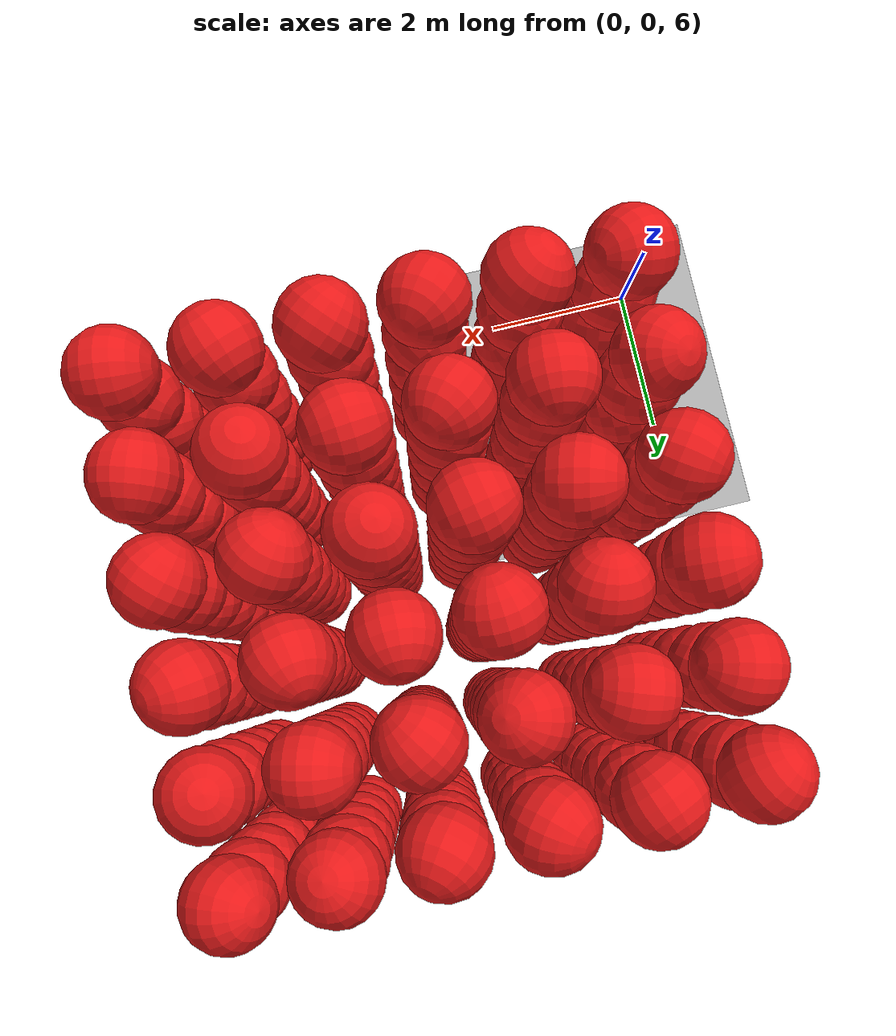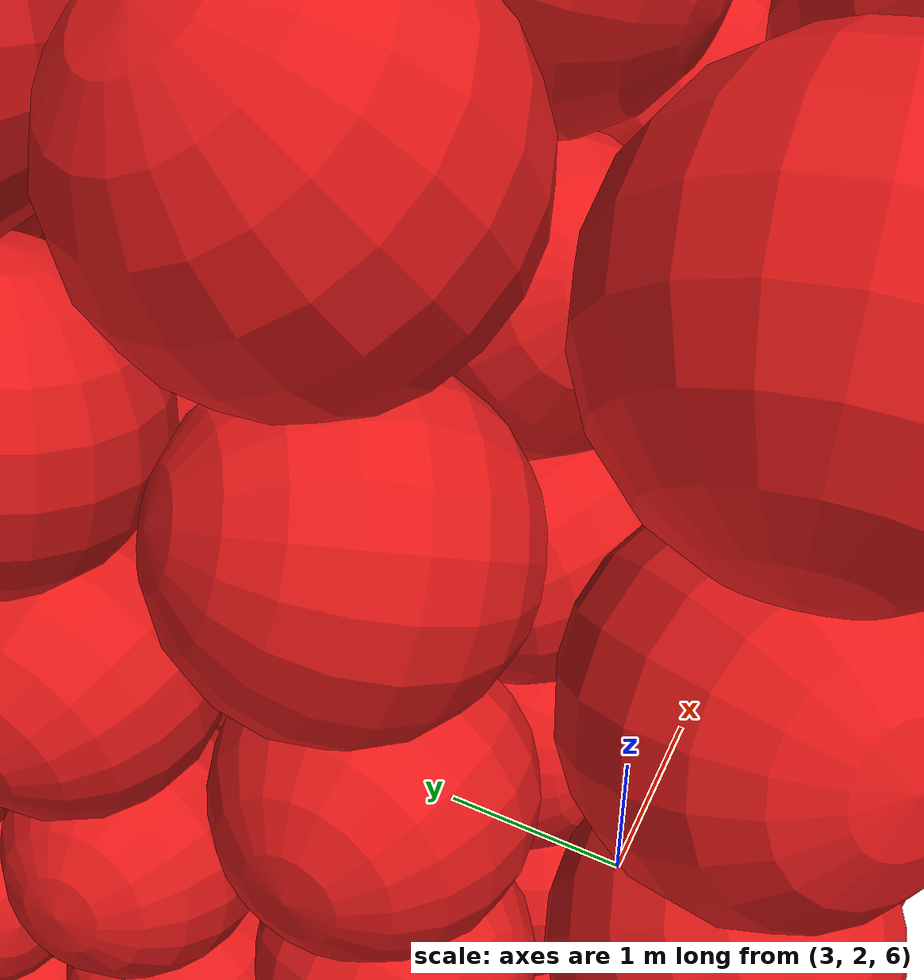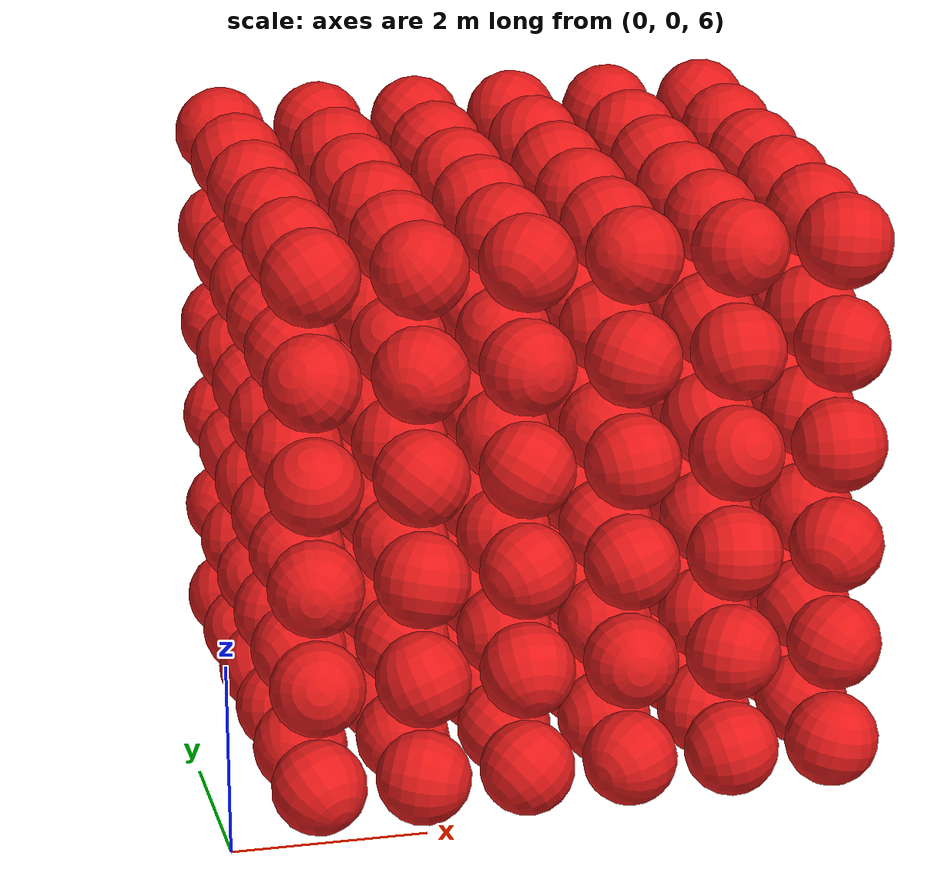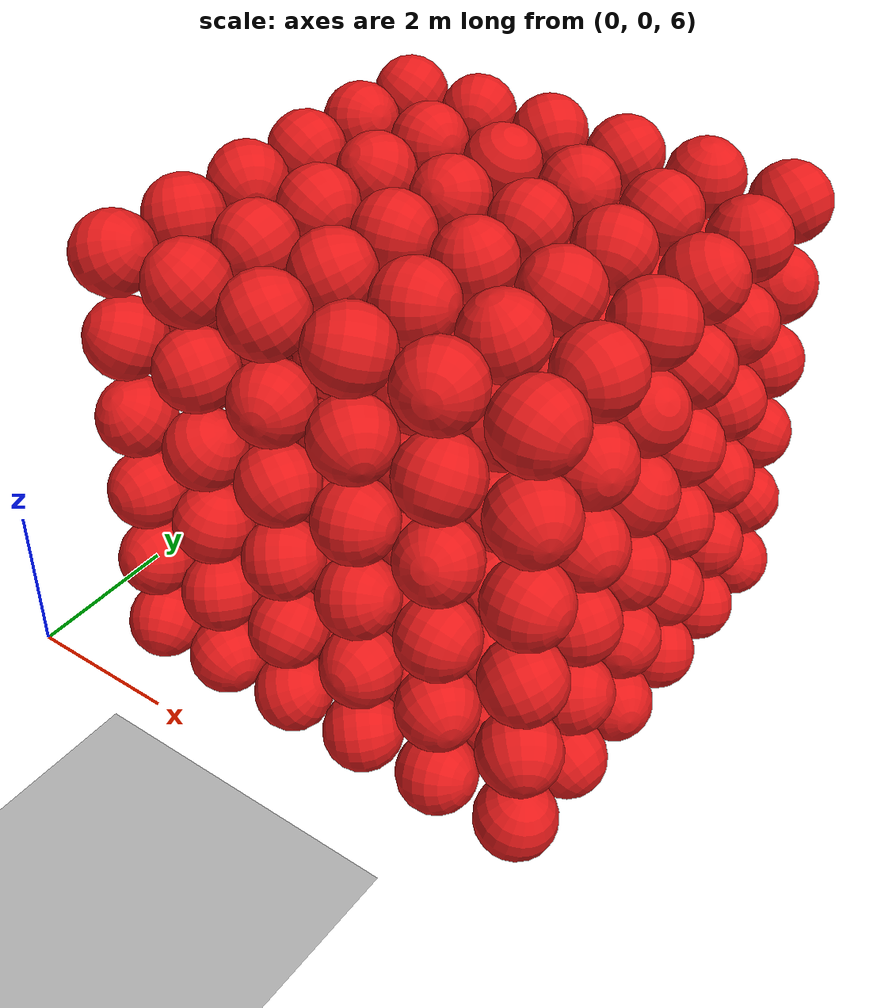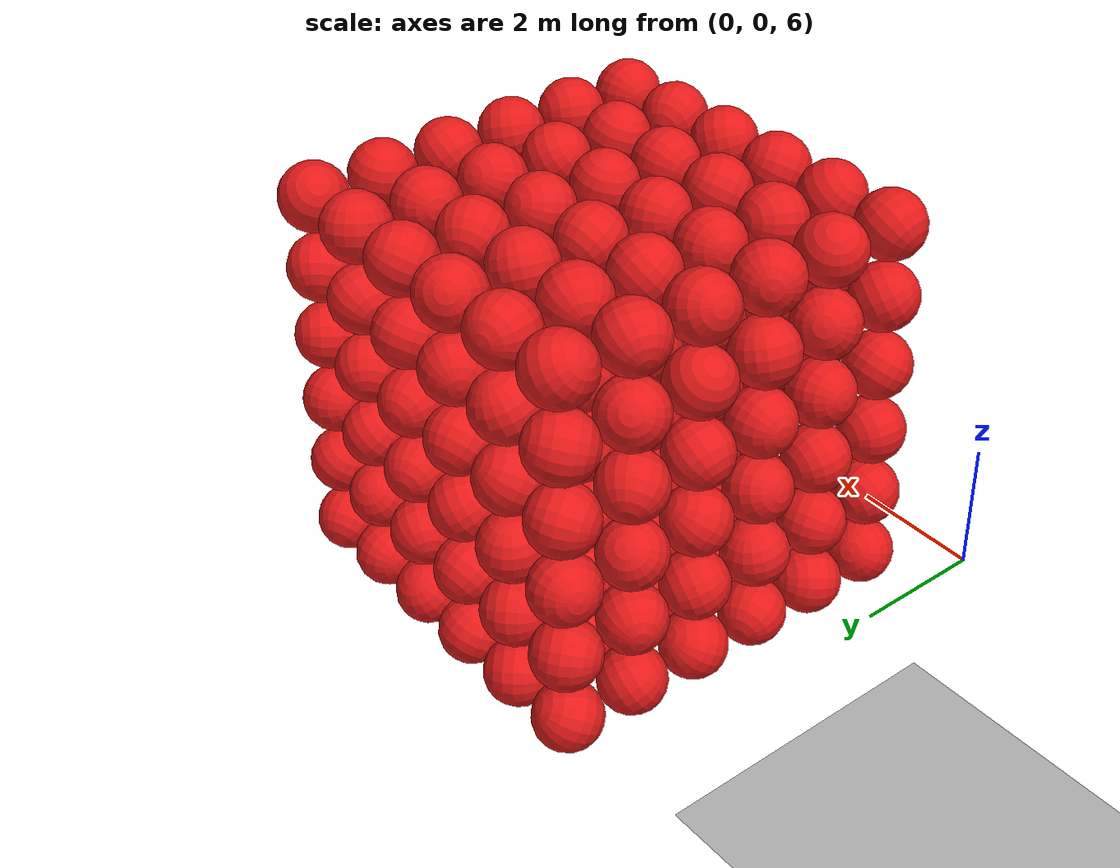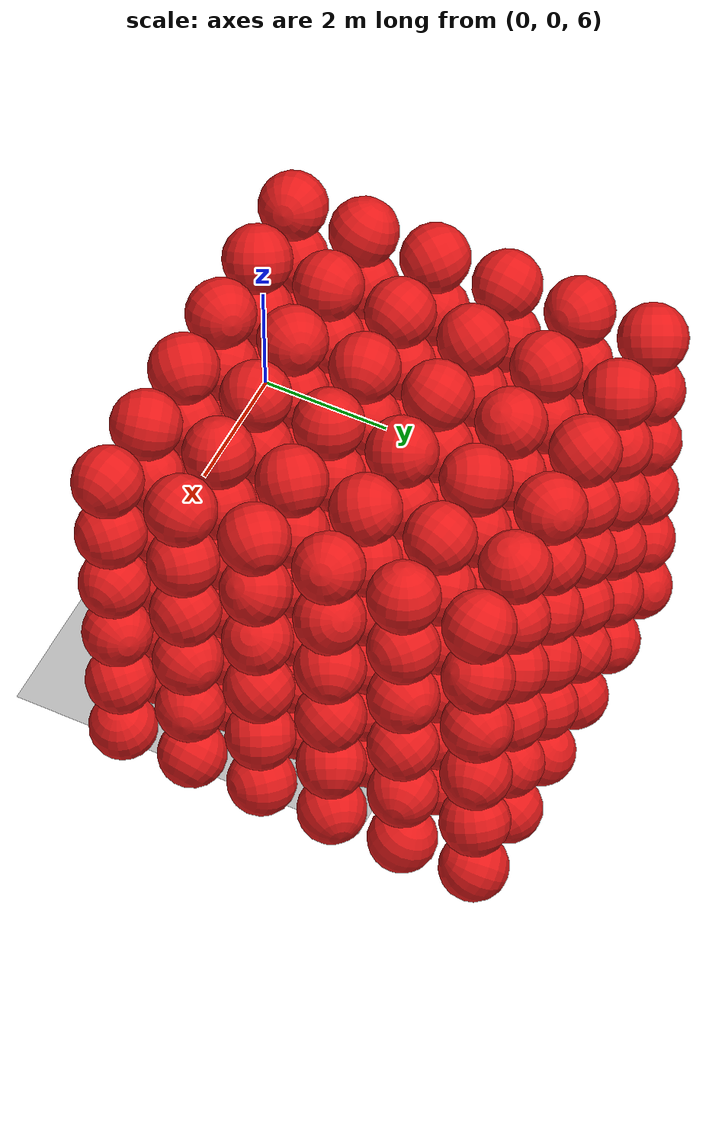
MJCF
<mujoco model="Humanoid and 100 objects">
    <compiler angle="degree"/>

    <option timestep="0.01" iterations="50" solver="PGS" jacobian="sparse" cone="elliptic" tolerance="1e-10"/>

    <size njmax="5000" nconmax="2000" nstack="1000000000"/>

    <default>
        <geom solimp=".9 .9 .01"/>

        <default class="object5">
			<geom type="sphere" material="geom" rgba=".9 .1 .1 1" size="0.500000"/>
        </default>
    </default>

    <asset>
        <texture type="skybox" builtin="gradient" width="128" height="128" rgb1=".4 .6 .8" rgb2="0 0 0"/>
        <texture name="texgeom" type="cube" builtin="flat" mark="cross" width="128" height="128"
            rgb1="0.6 0.6 0.6" rgb2="0.6 0.6 0.6" markrgb="1 1 1"/>
        <texture name="texplane" type="2d" builtin="checker" rgb1=".4 .4 .4" rgb2=".6 .6 .6"
            width="512" height="512"/>
        <material name='geom' texture="texgeom" texuniform="true"/>
        <material name='MatPlane' reflectance='0.3' texture="texplane" texrepeat="1 1" texuniform="true"/>
    </asset>

    <visual>
        <quality shadowsize="4096" offsamples="8"/>
        <map znear="0.1" force="0.05"/>
    </visual>

    <statistic extent="4"/>

    <worldbody>
        <light directional="true" diffuse=".8 .8 .8" pos="0 0 10" dir="0 0 -10"/>

        <geom pos="0 0 0" type="plane" size="3 3 .5" rgba=".7 .7 .7 1" material="MatPlane"/>
		<body pos="1.100397 1.100479 6.100565" quat="-0.016559 -0.367186 0.781212 -0.504587"> <freejoint/> <geom class="object5"/> </body>
		<body pos="1.100862 1.100033 7.200332" quat="0.394981 0.229237 -0.525211 0.718049"> <freejoint/> <geom class="object5"/> </body>
		<body pos="1.100543 1.100251 8.300579" quat="0.720309 0.685843 -0.030328 -0.099271"> <freejoint/> <geom class="object5"/> </body>
		<body pos="1.100312 1.100055 9.400754" quat="-0.655057 -0.256429 -0.185328 0.686148"> <freejoint/> <geom class="object5"/> </body>
		<body pos="1.100021 1.100844 10.500288" quat="-0.553621 -0.025768 0.507894 -0.659457"> <freejoint/> <geom class="object5"/> </body>
		<body pos="1.100216 1.100976 11.600593" quat="-0.273922 0.654992 0.554534 -0.434102"> <freejoint/> <geom class="object5"/> </body>
		<body pos="1.100002 2.200712 6.100868" quat="-0.620238 -0.749074 0.159563 0.169506"> <freejoint/> <geom class="object5"/> </body>
		<body pos="1.100516 2.200008 7.200689" quat="0.625063 0.523482 -0.541963 -0.203810"> <freejoint/> <geom class="object5"/> </body>
		<body pos="1.100242 2.200560 8.300613" quat="-0.366751 0.548940 0.544337 0.517548"> <freejoint/> <geom class="object5"/> </body>
		<body pos="1.100351 2.200054 9.400709" quat="0.599220 -0.410305 -0.469762 0.501905"> <freejoint/> <geom class="object5"/> </body>
		<body pos="1.100482 2.200852 10.500810" quat="-0.513131 -0.414122 -0.730301 0.178494"> <freejoint/> <geom class="object5"/> </body>
		<body pos="1.100777 2.200511 11.600028" quat="0.800736 0.001535 -0.274327 -0.532507"> <freejoint/> <geom class="object5"/> </body>
		<body pos="1.100626 3.300575 6.100751" quat="-0.554632 -0.229249 -0.569948 0.561237"> <freejoint/> <geom class="object5"/> </body>
		<body pos="1.100338 3.300275 7.200006" quat="0.629303 -0.005402 0.078879 0.773128"> <freejoint/> <geom class="object5"/> </body>
		<body pos="1.100723 3.300668 8.300179" quat="0.089478 0.814901 0.170151 0.546789"> <freejoint/> <geom class="object5"/> </body>
		<body pos="1.100985 3.300886 9.400214" quat="-0.689119 -0.072376 -0.719973 -0.038929"> <freejoint/> <geom class="object5"/> </body>
		<body pos="1.100951 3.300249 10.500386" quat="-0.145593 0.702597 0.689348 -0.099802"> <freejoint/> <geom class="object5"/> </body>
		<body pos="1.100381 3.300926 11.600741" quat="0.406642 0.764771 0.017283 0.499469"> <freejoint/> <geom class="object5"/> </body>
		<body pos="1.100452 4.400849 6.100390" quat="0.443211 0.885837 0.043320 -0.130308"> <freejoint/> <geom class="object5"/> </body>
		<body pos="1.100207 4.400323 7.200111" quat="-0.302660 -0.412543 -0.382951 0.769125"> <freejoint/> <geom class="object5"/> </body>
		<body pos="1.100532 4.400521 8.300774" quat="-0.827070 0.273231 -0.334000 -0.360200"> <freejoint/> <geom class="object5"/> </body>
		<body pos="1.100575 4.400864 9.400199" quat="0.303715 0.707692 -0.529834 -0.355255"> <freejoint/> <geom class="object5"/> </body>
		<body pos="1.100497 4.400890 10.500501" quat="-0.881501 0.134231 0.293496 -0.344670"> <freejoint/> <geom class="object5"/> </body>
		<body pos="1.100015 4.400703 11.600507" quat="-0.218977 -0.802381 -0.260816 -0.490111"> <freejoint/> <geom class="object5"/> </body>
		<body pos="1.100204 5.500814 6.100393" quat="-0.703616 -0.196933 0.433422 -0.527529"> <freejoint/> <geom class="object5"/> </body>
		<body pos="1.100912 5.500319 7.200330" quat="-0.400144 0.361519 -0.581790 0.608858"> <freejoint/> <geom class="object5"/> </body>
		<body pos="1.100158 5.500286 8.300687" quat="-0.596583 0.020094 0.367953 0.712949"> <freejoint/> <geom class="object5"/> </body>
		<body pos="1.100732 5.500750 9.400407" quat="-0.506586 0.040546 -0.546283 0.665809"> <freejoint/> <geom class="object5"/> </body>
		<body pos="1.100663 5.500816 10.500794" quat="-0.055538 -0.342409 0.337204 0.875194"> <freejoint/> <geom class="object5"/> </body>
		<body pos="1.100770 5.500830 11.600706" quat="0.209864 0.556653 -0.007215 0.803768"> <freejoint/> <geom class="object5"/> </body>
		<body pos="1.100068 6.600969 6.100099" quat="0.101011 -0.208636 -0.844949 0.482006"> <freejoint/> <geom class="object5"/> </body>
		<body pos="1.100614 6.600783 7.200567" quat="0.470427 0.116014 0.670962 0.561292"> <freejoint/> <geom class="object5"/> </body>
		<body pos="1.100508 6.600789 8.300473" quat="0.510074 -0.275386 0.738652 -0.344064"> <freejoint/> <geom class="object5"/> </body>
		<body pos="1.100073 6.600751 9.400831" quat="0.768254 -0.314651 0.553117 0.069579"> <freejoint/> <geom class="object5"/> </body>
		<body pos="1.100463 6.600821 10.500952" quat="-0.769048 0.378730 -0.481098 -0.183501"> <freejoint/> <geom class="object5"/> </body>
		<body pos="1.100268 6.600833 11.600995" quat="0.279959 0.381289 0.808189 0.350816"> <freejoint/> <geom class="object5"/> </body>
		<body pos="2.200568 1.100381 6.100635" quat="-0.641342 -0.433187 -0.615687 -0.148183"> <freejoint/> <geom class="object5"/> </body>
		<body pos="2.200503 1.100911 7.200206" quat="-0.543284 0.249518 -0.043987 -0.800406"> <freejoint/> <geom class="object5"/> </body>
		<body pos="2.200580 1.100878 8.300061" quat="-0.138633 -0.974832 0.148280 0.092175"> <freejoint/> <geom class="object5"/> </body>
		<body pos="2.200768 1.100233 9.400587" quat="-0.096912 0.852714 0.379929 -0.345168"> <freejoint/> <geom class="object5"/> </body>
		<body pos="2.200347 1.100254 10.500953" quat="-0.416251 -0.704606 -0.286103 0.498408"> <freejoint/> <geom class="object5"/> </body>
		<body pos="2.200706 1.100701 11.600006" quat="-0.268255 0.857139 -0.387809 0.207259"> <freejoint/> <geom class="object5"/> </body>
		<body pos="2.200298 2.200125 6.100388" quat="0.398138 0.603028 0.453659 -0.521571"> <freejoint/> <geom class="object5"/> </body>
		<body pos="2.200338 2.200236 7.200318" quat="0.751099 0.074809 0.386444 0.530014"> <freejoint/> <geom class="object5"/> </body>
		<body pos="2.200167 2.200903 8.300105" quat="0.451753 0.422776 0.400838 -0.675655"> <freejoint/> <geom class="object5"/> </body>
		<body pos="2.200446 2.200509 9.400530" quat="0.711655 0.351606 0.605062 0.061810"> <freejoint/> <geom class="object5"/> </body>
		<body pos="2.200956 2.200067 10.500542" quat="-0.533768 -0.046692 0.451931 -0.713211"> <freejoint/> <geom class="object5"/> </body>
		<body pos="2.200608 2.200326 11.600881" quat="-0.464190 -0.503425 0.581326 -0.439490"> <freejoint/> <geom class="object5"/> </body>
		<body pos="2.200153 3.300156 6.100090" quat="-0.096167 0.356380 0.699067 0.612414"> <freejoint/> <geom class="object5"/> </body>
		<body pos="2.200713 3.300473 7.200709" quat="0.795157 0.010026 -0.338413 0.503091"> <freejoint/> <geom class="object5"/> </body>
		<body pos="2.200236 3.300234 8.300465" quat="0.213909 0.206639 -0.676156 -0.674060"> <freejoint/> <geom class="object5"/> </body>
		<body pos="2.200284 3.300736 9.400411" quat="0.461457 0.610326 -0.141577 -0.628105"> <freejoint/> <geom class="object5"/> </body>
		<body pos="2.200571 3.300748 10.500320" quat="-0.013578 -0.534886 0.844131 -0.034003"> <freejoint/> <geom class="object5"/> </body>
		<body pos="2.200540 3.300221 11.600096" quat="-0.647206 0.470150 0.399474 -0.447777"> <freejoint/> <geom class="object5"/> </body>
		<body pos="2.200895 4.400684 6.100657" quat="0.720095 -0.684745 -0.111229 -0.014708"> <freejoint/> <geom class="object5"/> </body>
		<body pos="2.200584 4.400083 7.200660" quat="-0.897616 0.113944 0.425105 -0.024239"> <freejoint/> <geom class="object5"/> </body>
		<body pos="2.200618 4.400214 8.300646" quat="-0.242365 -0.804691 -0.248722 -0.481529"> <freejoint/> <geom class="object5"/> </body>
		<body pos="2.200241 4.400623 9.400523" quat="-0.147488 -0.479729 0.609510 0.613682"> <freejoint/> <geom class="object5"/> </body>
		<body pos="2.200284 4.400615 10.500779" quat="0.636895 0.587545 -0.161286 -0.472380"> <freejoint/> <geom class="object5"/> </body>
		<body pos="2.200797 4.400114 11.600159" quat="-0.365020 0.880470 0.209589 0.218188"> <freejoint/> <geom class="object5"/> </body>
		<body pos="2.200926 5.500575 6.100010" quat="0.769660 0.270690 -0.049970 -0.576068"> <freejoint/> <geom class="object5"/> </body>
		<body pos="2.200258 5.500481 7.200227" quat="-0.663557 -0.486216 -0.355085 -0.444074"> <freejoint/> <geom class="object5"/> </body>
		<body pos="2.200606 5.500824 8.300811" quat="0.516196 0.355441 0.613788 0.480070"> <freejoint/> <geom class="object5"/> </body>
		<body pos="2.200204 5.500993 9.400094" quat="0.340986 -0.644814 -0.579848 -0.362932"> <freejoint/> <geom class="object5"/> </body>
		<body pos="2.200198 5.500507 10.500951" quat="-0.383148 0.307066 0.387309 0.780320"> <freejoint/> <geom class="object5"/> </body>
		<body pos="2.200402 5.500859 11.600920" quat="0.440267 -0.376325 0.520964 -0.627009"> <freejoint/> <geom class="object5"/> </body>
		<body pos="2.200505 6.600611 6.100704" quat="-0.181493 0.355773 0.602515 -0.690986"> <freejoint/> <geom class="object5"/> </body>
		<body pos="2.200138 6.600863 7.200422" quat="-0.123863 0.641258 0.349504 0.671783"> <freejoint/> <geom class="object5"/> </body>
		<body pos="2.200234 6.600096 8.300385" quat="0.000566 0.145809 0.989201 -0.014828"> <freejoint/> <geom class="object5"/> </body>
		<body pos="2.200401 6.600995 9.400261" quat="0.295747 0.830501 0.306169 -0.359253"> <freejoint/> <geom class="object5"/> </body>
		<body pos="2.200531 6.600001 10.500884" quat="-0.190007 -0.395042 0.895390 -0.078199"> <freejoint/> <geom class="object5"/> </body>
		<body pos="2.200288 6.600085 11.600582" quat="-0.582717 -0.717045 0.135319 -0.357737"> <freejoint/> <geom class="object5"/> </body>
		<body pos="3.300362 1.100725 6.100858" quat="-0.209205 0.635169 0.623922 -0.404370"> <freejoint/> <geom class="object5"/> </body>
		<body pos="3.300768 1.100616 7.200919" quat="0.291242 0.574143 0.692122 -0.326350"> <freejoint/> <geom class="object5"/> </body>
		<body pos="3.300252 1.100037 8.300472" quat="0.394976 -0.601780 0.048628 -0.692452"> <freejoint/> <geom class="object5"/> </body>
		<body pos="3.300298 1.100650 9.400891" quat="0.589541 -0.473592 -0.164739 0.633256"> <freejoint/> <geom class="object5"/> </body>
		<body pos="3.300257 1.100967 10.500619" quat="-0.676383 0.659294 0.314678 0.093887"> <freejoint/> <geom class="object5"/> </body>
		<body pos="3.300251 1.100040 11.600233" quat="-0.231753 0.222689 0.811123 -0.488651"> <freejoint/> <geom class="object5"/> </body>
		<body pos="3.300757 2.200886 6.100472" quat="-0.567848 0.517627 -0.039110 -0.638812"> <freejoint/> <geom class="object5"/> </body>
		<body pos="3.300876 2.200635 7.200097" quat="0.447362 -0.509295 -0.504110 0.535126"> <freejoint/> <geom class="object5"/> </body>
		<body pos="3.300686 2.200377 8.300504" quat="0.436428 -0.747199 0.374204 0.333460"> <freejoint/> <geom class="object5"/> </body>
		<body pos="3.300459 2.200582 9.400339" quat="-0.541552 -0.165744 0.690190 -0.450431"> <freejoint/> <geom class="object5"/> </body>
		<body pos="3.300361 2.200325 10.500084" quat="0.022228 0.584183 0.710103 0.392414"> <freejoint/> <geom class="object5"/> </body>
		<body pos="3.300383 2.200298 11.600692" quat="0.537704 0.600019 -0.591820 -0.024488"> <freejoint/> <geom class="object5"/> </body>
		<body pos="3.300128 3.300253 6.100884" quat="-0.582474 -0.726161 0.083797 -0.355517"> <freejoint/> <geom class="object5"/> </body>
		<body pos="3.300382 3.300792 7.200839" quat="0.479051 -0.220813 0.379787 -0.759943"> <freejoint/> <geom class="object5"/> </body>
		<body pos="3.300617 3.300675 8.300601" quat="-0.315585 -0.278436 -0.674574 0.606490"> <freejoint/> <geom class="object5"/> </body>
		<body pos="3.300493 3.300355 9.400775" quat="-0.411924 0.539696 0.495393 0.541879"> <freejoint/> <geom class="object5"/> </body>
		<body pos="3.300370 3.300383 10.500861" quat="-0.071210 0.139197 0.385355 0.909425"> <freejoint/> <geom class="object5"/> </body>
		<body pos="3.300546 3.300637 11.600571" quat="0.588356 0.501095 -0.454804 -0.442599"> <freejoint/> <geom class="object5"/> </body>
		<body pos="3.300244 4.400752 6.100199" quat="0.675657 0.293295 -0.454080 0.501275"> <freejoint/> <geom class="object5"/> </body>
		<body pos="3.300909 4.400962 7.200571" quat="0.188699 -0.970334 0.041051 0.145463"> <freejoint/> <geom class="object5"/> </body>
		<body pos="3.300165 4.400494 8.300535" quat="-0.499840 0.204403 -0.786095 -0.300722"> <freejoint/> <geom class="object5"/> </body>
		<body pos="3.300533 4.400327 9.400602" quat="-0.235628 -0.623050 0.706220 0.239880"> <freejoint/> <geom class="object5"/> </body>
		<body pos="3.300659 4.400675 10.500745" quat="0.680556 0.033129 -0.692397 -0.237346"> <freejoint/> <geom class="object5"/> </body>
		<body pos="3.300821 4.400171 11.600330" quat="0.583837 0.383356 -0.347710 0.625516"> <freejoint/> <geom class="object5"/> </body>
		<body pos="3.300064 5.500425 6.100404" quat="-0.235558 -0.916831 -0.178815 0.268252"> <freejoint/> <geom class="object5"/> </body>
		<body pos="3.300988 5.500220 7.200354" quat="-0.359466 -0.320628 -0.479185 -0.733732"> <freejoint/> <geom class="object5"/> </body>
		<body pos="3.300449 5.500244 8.300869" quat="0.045000 0.651367 0.745415 0.134361"> <freejoint/> <geom class="object5"/> </body>
		<body pos="3.300119 5.500927 9.400594" quat="0.649717 -0.127913 0.181658 -0.726984"> <freejoint/> <geom class="object5"/> </body>
		<body pos="3.300925 5.500642 10.500104" quat="0.362685 -0.188739 -0.751899 -0.517190"> <freejoint/> <geom class="object5"/> </body>
		<body pos="3.300249 5.500227 11.600703" quat="0.862952 0.160557 0.181598 0.443348"> <freejoint/> <geom class="object5"/> </body>
		<body pos="3.300985 6.600634 6.100600" quat="0.640203 0.110829 -0.257498 0.715228"> <freejoint/> <geom class="object5"/> </body>
		<body pos="3.300440 6.600602 7.200720" quat="0.306437 -0.492348 -0.717122 -0.386556"> <freejoint/> <geom class="object5"/> </body>
		<body pos="3.300868 6.600559 8.300465" quat="-0.194438 0.764334 0.429389 0.440015"> <freejoint/> <geom class="object5"/> </body>
		<body pos="3.300161 6.600432 9.400505" quat="-0.363587 -0.057243 -0.459570 0.808284"> <freejoint/> <geom class="object5"/> </body>
		<body pos="3.300384 6.600712 10.500481" quat="0.359349 0.686083 0.027054 0.632002"> <freejoint/> <geom class="object5"/> </body>
		<body pos="3.300218 6.600873 11.600083" quat="-0.052901 -0.731015 0.471391 -0.490519"> <freejoint/> <geom class="object5"/> </body>
		<body pos="4.400165 1.100182 6.100691" quat="-0.648700 -0.457557 0.608130 0.002606"> <freejoint/> <geom class="object5"/> </body>
		<body pos="4.400909 1.100058 7.200437" quat="0.143335 0.129077 0.642370 -0.741725"> <freejoint/> <geom class="object5"/> </body>
		<body pos="4.400300 1.100002 8.300951" quat="0.496917 0.468936 -0.673881 -0.281171"> <freejoint/> <geom class="object5"/> </body>
		<body pos="4.400151 1.100497 9.400809" quat="0.375483 0.532417 0.394421 0.648056"> <freejoint/> <geom class="object5"/> </body>
		<body pos="4.400860 1.100627 10.500181" quat="0.107841 -0.494928 0.597342 -0.621771"> <freejoint/> <geom class="object5"/> </body>
		<body pos="4.400339 1.100581 11.600475" quat="0.662471 0.066781 -0.591670 0.454531"> <freejoint/> <geom class="object5"/> </body>
		<body pos="4.400149 2.200658 6.100634" quat="-0.423606 -0.497278 -0.522122 -0.548326"> <freejoint/> <geom class="object5"/> </body>
		<body pos="4.400203 2.200955 7.200016" quat="0.547931 -0.568043 0.564215 -0.242405"> <freejoint/> <geom class="object5"/> </body>
		<body pos="4.400525 2.200862 8.300896" quat="-0.421828 0.218001 0.598488 0.645251"> <freejoint/> <geom class="object5"/> </body>
		<body pos="4.400108 2.200179 9.400747" quat="-0.631292 -0.600722 -0.015237 0.490277"> <freejoint/> <geom class="object5"/> </body>
		<body pos="4.400997 2.200004 10.500543" quat="0.482536 0.546355 0.461173 0.505938"> <freejoint/> <geom class="object5"/> </body>
		<body pos="4.400746 2.200117 11.600509" quat="-0.462939 0.462859 0.598315 -0.462026"> <freejoint/> <geom class="object5"/> </body>
		<body pos="4.400884 3.300388 6.100383" quat="-0.458368 0.737817 0.484351 -0.104545"> <freejoint/> <geom class="object5"/> </body>
		<body pos="4.400710 3.300944 7.200174" quat="-0.462308 0.255097 0.558622 0.639639"> <freejoint/> <geom class="object5"/> </body>
		<body pos="4.400398 3.300115 8.300080" quat="-0.257424 0.606799 -0.526518 0.536942"> <freejoint/> <geom class="object5"/> </body>
		<body pos="4.400655 3.300026 9.400786" quat="0.647358 -0.011776 0.511699 -0.564759"> <freejoint/> <geom class="object5"/> </body>
		<body pos="4.400760 3.300926 10.500833" quat="-0.618594 -0.737839 0.057373 -0.263901"> <freejoint/> <geom class="object5"/> </body>
		<body pos="4.400479 3.300994 11.600604" quat="0.846521 -0.018185 -0.118068 0.518778"> <freejoint/> <geom class="object5"/> </body>
		<body pos="4.400744 4.400443 6.100053" quat="-0.581976 0.420742 0.219675 -0.660320"> <freejoint/> <geom class="object5"/> </body>
		<body pos="4.400557 4.400720 7.200110" quat="-0.420794 0.461882 -0.536607 0.567142"> <freejoint/> <geom class="object5"/> </body>
		<body pos="4.400924 4.400013 8.300377" quat="-0.478024 0.057881 -0.573213 -0.663000"> <freejoint/> <geom class="object5"/> </body>
		<body pos="4.400933 4.400972 9.400361" quat="0.202976 -0.608136 -0.411129 -0.648031"> <freejoint/> <geom class="object5"/> </body>
		<body pos="4.400469 4.400150 10.500991" quat="-0.140495 0.877154 0.431953 0.155817"> <freejoint/> <geom class="object5"/> </body>
		<body pos="4.400540 4.400705 11.600005" quat="0.361967 0.546905 -0.629986 0.415923"> <freejoint/> <geom class="object5"/> </body>
		<body pos="4.400767 5.500997 6.100228" quat="0.658677 0.222938 -0.619643 -0.363985"> <freejoint/> <geom class="object5"/> </body>
		<body pos="4.400764 5.500806 7.200104" quat="-0.056079 -0.520965 0.783859 -0.333189"> <freejoint/> <geom class="object5"/> </body>
		<body pos="4.400858 5.500260 8.300878" quat="-0.490486 0.407821 -0.736850 0.223959"> <freejoint/> <geom class="object5"/> </body>
		<body pos="4.400567 5.500376 9.400213" quat="0.436248 -0.529423 -0.016212 -0.727418"> <freejoint/> <geom class="object5"/> </body>
		<body pos="4.400187 5.500485 10.500838" quat="-0.543623 0.351695 0.289373 -0.705016"> <freejoint/> <geom class="object5"/> </body>
		<body pos="4.400489 5.500971 11.600112" quat="0.823536 0.469109 0.318909 -0.004664"> <freejoint/> <geom class="object5"/> </body>
		<body pos="4.400568 6.600427 6.100076" quat="-0.418024 0.122435 0.266156 0.859900"> <freejoint/> <geom class="object5"/> </body>
		<body pos="4.400978 6.600094 7.200662" quat="0.570025 -0.145218 -0.797268 -0.135453"> <freejoint/> <geom class="object5"/> </body>
		<body pos="4.400671 6.600960 8.300089" quat="0.456236 0.139097 0.631616 -0.611197"> <freejoint/> <geom class="object5"/> </body>
		<body pos="4.400293 6.600052 9.400504" quat="0.568303 -0.459543 -0.581568 -0.357255"> <freejoint/> <geom class="object5"/> </body>
		<body pos="4.400453 6.600737 10.500510" quat="-0.183228 0.632382 0.725605 0.200043"> <freejoint/> <geom class="object5"/> </body>
		<body pos="4.400132 6.600618 11.600383" quat="0.854453 -0.370823 0.358679 0.061242"> <freejoint/> <geom class="object5"/> </body>
		<body pos="5.500193 1.100689 6.100050" quat="-0.418078 -0.601935 0.510123 0.450177"> <freejoint/> <geom class="object5"/> </body>
		<body pos="5.500118 1.100410 7.200120" quat="0.101301 0.631464 -0.342317 0.688338"> <freejoint/> <geom class="object5"/> </body>
		<body pos="5.500350 1.100209 8.300666" quat="0.709088 0.183809 -0.653837 -0.189488"> <freejoint/> <geom class="object5"/> </body>
		<body pos="5.500166 1.100231 9.400052" quat="0.657105 0.479703 -0.207695 0.543103"> <freejoint/> <geom class="object5"/> </body>
		<body pos="5.500754 1.100622 10.500394" quat="-0.302590 -0.884076 -0.340436 0.104655"> <freejoint/> <geom class="object5"/> </body>
		<body pos="5.500461 1.100645 11.600514" quat="0.604544 -0.774491 -0.069768 0.172691"> <freejoint/> <geom class="object5"/> </body>
		<body pos="5.500187 2.200611 6.100052" quat="0.212786 0.961959 -0.000770 -0.171335"> <freejoint/> <geom class="object5"/> </body>
		<body pos="5.500149 2.200028 7.200757" quat="0.546134 -0.380763 -0.709707 -0.230379"> <freejoint/> <geom class="object5"/> </body>
		<body pos="5.500829 2.200842 8.300665" quat="0.604155 0.581806 -0.508518 0.194699"> <freejoint/> <geom class="object5"/> </body>
		<body pos="5.500481 2.200067 9.400898" quat="-0.004871 0.477132 -0.773175 -0.417758"> <freejoint/> <geom class="object5"/> </body>
		<body pos="5.500651 2.200134 10.500639" quat="-0.330408 0.763004 0.439127 -0.340327"> <freejoint/> <geom class="object5"/> </body>
		<body pos="5.500300 2.200340 11.600919" quat="-0.096451 -0.126819 -0.101040 0.982041"> <freejoint/> <geom class="object5"/> </body>
		<body pos="5.500219 3.300882 6.100020" quat="-0.431245 0.725017 -0.428414 0.323789"> <freejoint/> <geom class="object5"/> </body>
		<body pos="5.500453 3.300010 7.200599" quat="0.423852 0.623529 -0.656338 -0.027963"> <freejoint/> <geom class="object5"/> </body>
		<body pos="5.500702 3.300888 8.300055" quat="-0.572843 0.213630 0.376635 0.695959"> <freejoint/> <geom class="object5"/> </body>
		<body pos="5.500125 3.300364 9.400676" quat="-0.217884 0.637399 -0.364811 -0.642777"> <freejoint/> <geom class="object5"/> </body>
		<body pos="5.500673 3.300203 10.500869" quat="0.377680 -0.121234 -0.751533 -0.527123"> <freejoint/> <geom class="object5"/> </body>
		<body pos="5.500274 3.300872 11.600601" quat="-0.360733 -0.435165 -0.130493 0.814540"> <freejoint/> <geom class="object5"/> </body>
		<body pos="5.500925 4.400505 6.100628" quat="0.314527 -0.682931 0.107488 -0.650481"> <freejoint/> <geom class="object5"/> </body>
		<body pos="5.500423 4.400468 7.200023" quat="-0.698404 0.680789 0.054827 -0.213898"> <freejoint/> <geom class="object5"/> </body>
		<body pos="5.500364 4.400151 8.300150" quat="-0.413777 -0.454922 0.787707 -0.036777"> <freejoint/> <geom class="object5"/> </body>
		<body pos="5.500465 4.400131 9.400886" quat="0.275495 0.528965 0.246977 0.763741"> <freejoint/> <geom class="object5"/> </body>
		<body pos="5.500980 4.400250 10.500625" quat="0.439245 -0.003521 0.673233 -0.594818"> <freejoint/> <geom class="object5"/> </body>
		<body pos="5.500124 4.400003 11.600153" quat="0.152271 0.047399 -0.511649 -0.844264"> <freejoint/> <geom class="object5"/> </body>
		<body pos="5.500004 5.500815 6.100638" quat="-0.100324 -0.496981 0.589169 0.629146"> <freejoint/> <geom class="object5"/> </body>
		<body pos="5.500852 5.500467 7.200971" quat="0.501085 -0.618863 -0.385312 0.466323"> <freejoint/> <geom class="object5"/> </body>
		<body pos="5.500406 5.500466 8.300952" quat="0.681803 0.388968 0.109283 0.609840"> <freejoint/> <geom class="object5"/> </body>
		<body pos="5.500495 5.500166 9.400326" quat="-0.314972 0.090205 -0.669238 -0.666915"> <freejoint/> <geom class="object5"/> </body>
		<body pos="5.500167 5.500947 10.500811" quat="0.242776 0.542464 0.574973 0.562316"> <freejoint/> <geom class="object5"/> </body>
		<body pos="5.500150 5.500958 11.600530" quat="-0.611549 -0.270197 0.567407 0.480678"> <freejoint/> <geom class="object5"/> </body>
		<body pos="5.500002 6.600640 6.100803" quat="-0.372210 -0.636554 -0.345897 -0.580185"> <freejoint/> <geom class="object5"/> </body>
		<body pos="5.500484 6.600419 7.200381" quat="0.606426 -0.124561 -0.338915 -0.708427"> <freejoint/> <geom class="object5"/> </body>
		<body pos="5.500219 6.600239 8.300029" quat="0.366867 -0.892845 0.201142 -0.166669"> <freejoint/> <geom class="object5"/> </body>
		<body pos="5.500249 6.600652 9.400320" quat="-0.613245 0.055030 -0.518552 0.593301"> <freejoint/> <geom class="object5"/> </body>
		<body pos="5.500666 6.600848 10.500763" quat="0.701012 0.303573 0.480473 0.430780"> <freejoint/> <geom class="object5"/> </body>
		<body pos="5.500321 6.600532 11.600873" quat="-0.735921 0.000662 -0.111078 0.667893"> <freejoint/> <geom class="object5"/> </body>
		<body pos="6.600630 1.100983 6.100585" quat="0.722920 -0.066185 0.095974 -0.681025"> <freejoint/> <geom class="object5"/> </body>
		<body pos="6.600634 1.100963 7.200534" quat="-0.032332 0.465758 -0.645961 0.603953"> <freejoint/> <geom class="object5"/> </body>
		<body pos="6.600004 1.100512 8.300678" quat="0.302241 -0.099025 -0.825101 0.466961"> <freejoint/> <geom class="object5"/> </body>
		<body pos="6.600913 1.100683 9.400947" quat="-0.714433 0.019654 -0.694761 0.080658"> <freejoint/> <geom class="object5"/> </body>
		<body pos="6.600689 1.100147 10.500778" quat="-0.159866 0.630760 -0.305571 -0.695133"> <freejoint/> <geom class="object5"/> </body>
		<body pos="6.600219 1.100083 11.600950" quat="-0.577780 -0.460346 -0.582512 -0.339016"> <freejoint/> <geom class="object5"/> </body>
		<body pos="6.600011 2.200642 6.100517" quat="-0.434331 -0.522739 -0.698338 -0.224555"> <freejoint/> <geom class="object5"/> </body>
		<body pos="6.600008 2.200603 7.200479" quat="-0.370537 0.472037 0.655304 -0.458759"> <freejoint/> <geom class="object5"/> </body>
		<body pos="6.600514 2.200447 8.300341" quat="0.497131 0.707261 0.185378 -0.467202"> <freejoint/> <geom class="object5"/> </body>
		<body pos="6.600123 2.200580 9.400329" quat="-0.531551 0.115199 -0.732578 0.409283"> <freejoint/> <geom class="object5"/> </body>
		<body pos="6.600056 2.200034 10.500287" quat="-0.616393 0.584250 0.505538 -0.152128"> <freejoint/> <geom class="object5"/> </body>
		<body pos="6.600169 2.200430 11.600416" quat="0.346874 -0.141814 0.685075 0.624692"> <freejoint/> <geom class="object5"/> </body>
		<body pos="6.600951 3.300346 6.100290" quat="0.635481 -0.476518 -0.606595 0.033715"> <freejoint/> <geom class="object5"/> </body>
		<body pos="6.600905 3.300403 7.200216" quat="-0.674045 0.692925 0.164601 -0.196021"> <freejoint/> <geom class="object5"/> </body>
		<body pos="6.600665 3.300792 8.300333" quat="0.312479 -0.480390 0.744001 0.343577"> <freejoint/> <geom class="object5"/> </body>
		<body pos="6.600167 3.300443 9.400633" quat="0.888045 0.060580 0.261218 0.373459"> <freejoint/> <geom class="object5"/> </body>
		<body pos="6.600923 3.300153 10.500406" quat="-0.394909 0.408334 0.822754 -0.019646"> <freejoint/> <geom class="object5"/> </body>
		<body pos="6.600806 3.300326 11.600550" quat="-0.200168 0.714219 0.316984 0.591054"> <freejoint/> <geom class="object5"/> </body>
		<body pos="6.600110 4.400279 6.100768" quat="-0.404563 -0.663868 -0.090401 0.622443"> <freejoint/> <geom class="object5"/> </body>
		<body pos="6.600262 4.400570 7.200360" quat="-0.758726 0.000672 0.524376 -0.386477"> <freejoint/> <geom class="object5"/> </body>
		<body pos="6.600046 4.400246 8.300661" quat="-0.292879 0.273832 -0.836103 0.374392"> <freejoint/> <geom class="object5"/> </body>
		<body pos="6.600391 4.400034 9.400406" quat="0.259975 0.506393 0.581726 0.581011"> <freejoint/> <geom class="object5"/> </body>
		<body pos="6.600896 4.400866 10.500801" quat="0.132354 -0.195305 -0.897654 0.372229"> <freejoint/> <geom class="object5"/> </body>
		<body pos="6.600864 4.400275 11.600840" quat="-0.702688 -0.198421 -0.379514 -0.568179"> <freejoint/> <geom class="object5"/> </body>
		<body pos="6.600631 5.500316 6.100959" quat="-0.002399 0.431739 -0.881622 0.190626"> <freejoint/> <geom class="object5"/> </body>
		<body pos="6.600576 5.500807 7.200655" quat="0.524302 0.557771 -0.482076 -0.426147"> <freejoint/> <geom class="object5"/> </body>
		<body pos="6.600791 5.500061 8.300390" quat="-0.344526 0.403336 -0.681684 0.503913"> <freejoint/> <geom class="object5"/> </body>
		<body pos="6.600783 5.500532 9.400253" quat="-0.545928 0.160075 -0.604807 -0.557268"> <freejoint/> <geom class="object5"/> </body>
		<body pos="6.600130 5.500451 10.500672" quat="0.589381 -0.002573 -0.746784 -0.308117"> <freejoint/> <geom class="object5"/> </body>
		<body pos="6.600642 5.500786 11.600289" quat="-0.006377 0.952436 0.284528 0.108946"> <freejoint/> <geom class="object5"/> </body>
		<body pos="6.600331 6.600412 6.100794" quat="-0.569877 -0.135910 -0.480409 0.652669"> <freejoint/> <geom class="object5"/> </body>
		<body pos="6.600568 6.600652 7.200491" quat="-0.223409 -0.049539 -0.953580 -0.195752"> <freejoint/> <geom class="object5"/> </body>
		<body pos="6.600969 6.600781 8.300729" quat="0.464396 0.448541 0.600087 0.472274"> <freejoint/> <geom class="object5"/> </body>
		<body pos="6.600979 6.600111 9.400396" quat="-0.011250 -0.342786 -0.656130 0.672209"> <freejoint/> <geom class="object5"/> </body>
		<body pos="6.600726 6.600148 10.500148" quat="0.415086 -0.241173 -0.858424 -0.180687"> <freejoint/> <geom class="object5"/> </body>
		<body pos="6.600143 6.600799 11.600930" quat="-0.825020 0.249932 0.297393 -0.410406"> <freejoint/> <geom class="object5"/> </body>

    </worldbody>
</mujoco>
